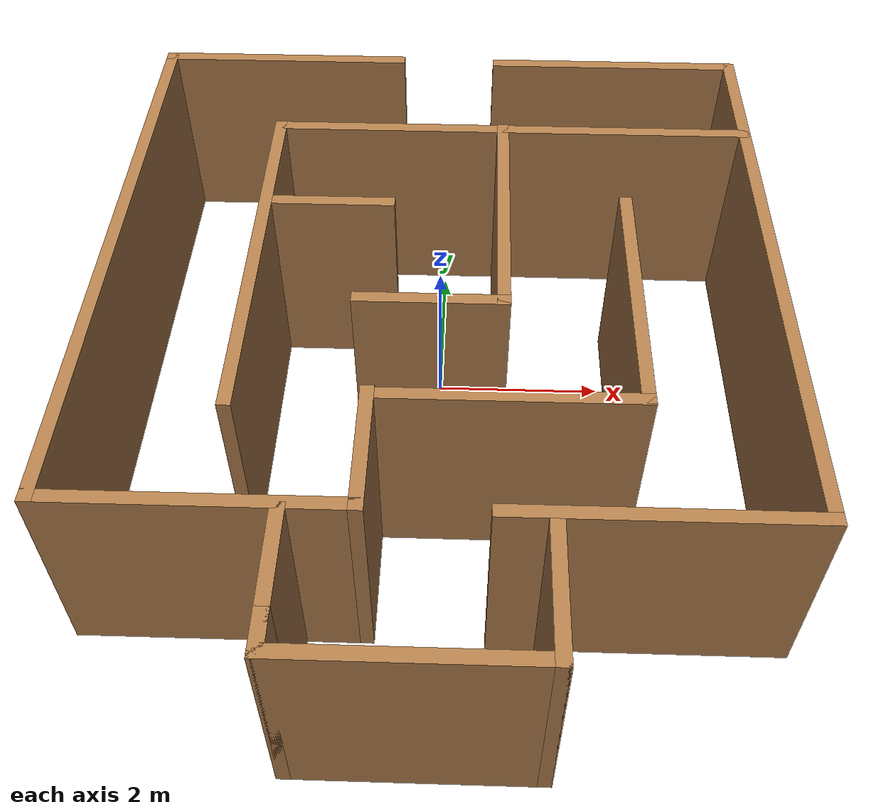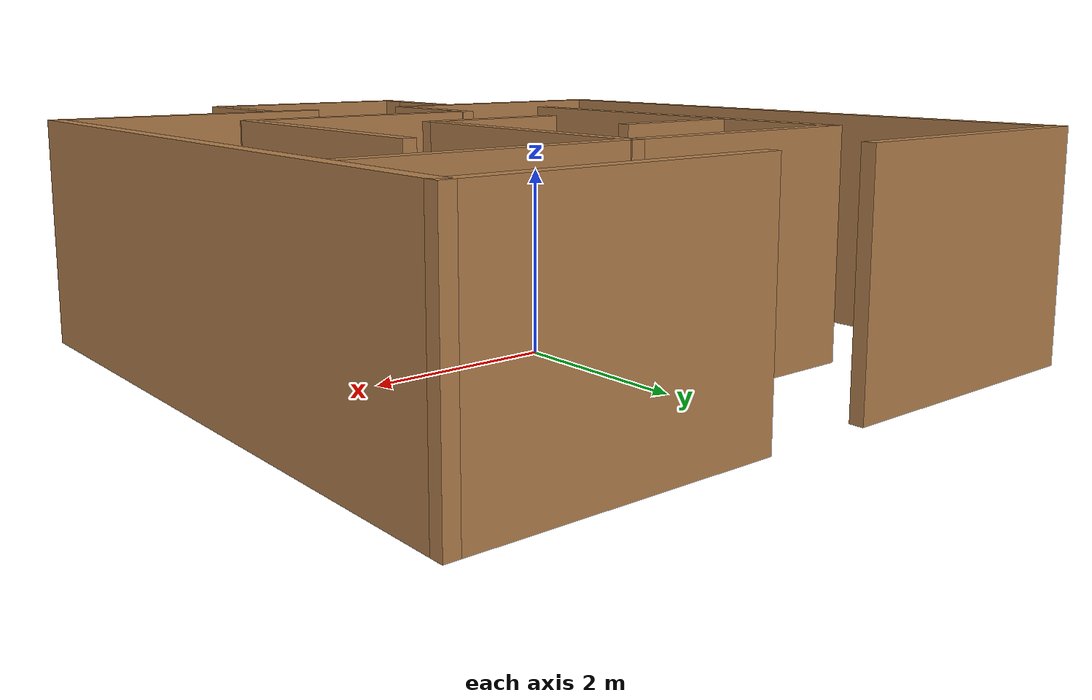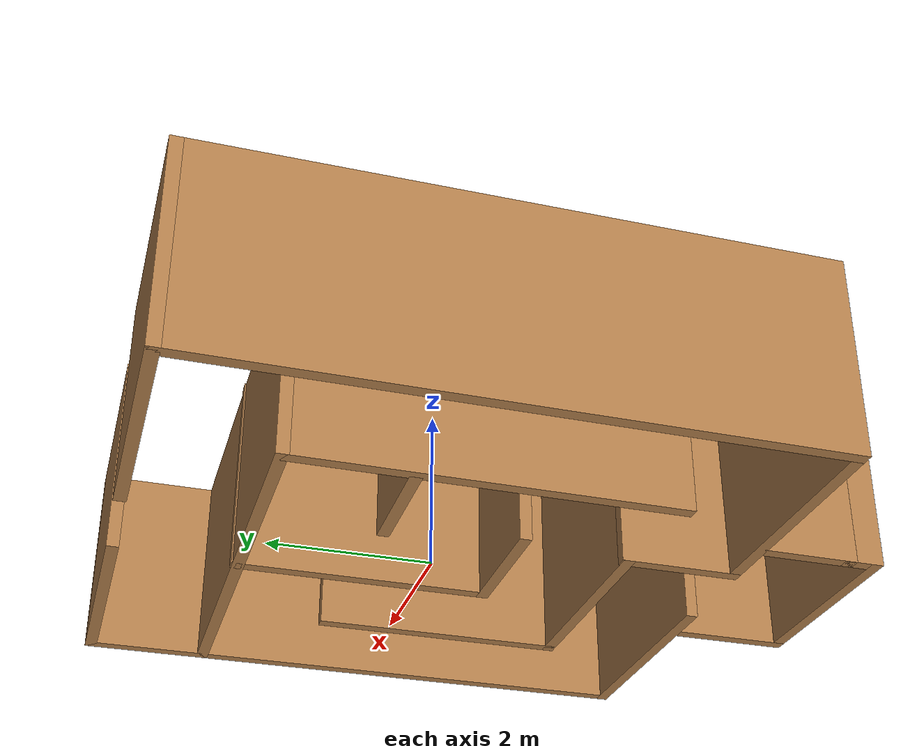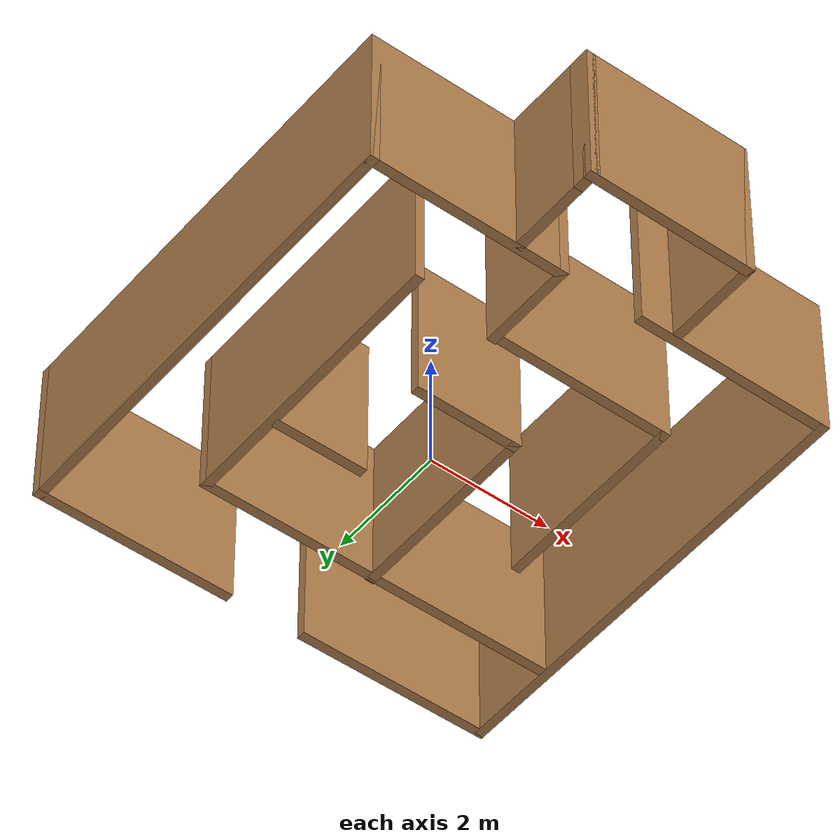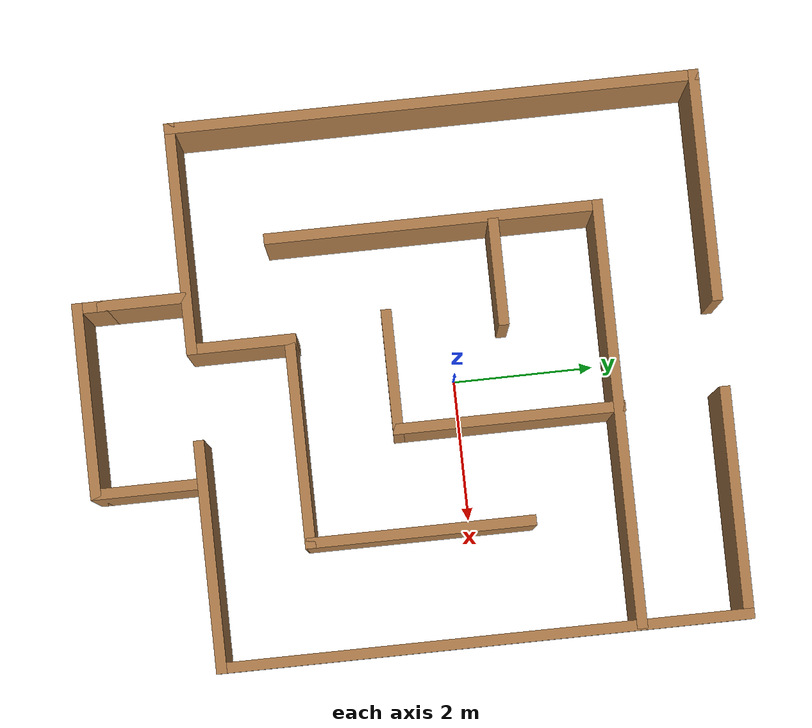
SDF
<?xml version='1.0'?>
<sdf version='1.7'>
  <model name='my_maze'>
    <pose>-0.009006 -0.706474 0 0 -0 0</pose>
    <link name='Wall_11'>
      <collision name='Wall_11_Collision'>
        <geometry>
          <box>
            <size>3.25 0.15 2.5</size>
          </box>
        </geometry>
        <pose>0 0 1.25 0 -0 0</pose>
      </collision>
      <visual name='Wall_11_Visual'>
        <pose>0 0 1.25 0 -0 0</pose>
        <geometry>
          <box>
            <size>3.25 0.15 2.5</size>
          </box>
        </geometry>
        <material>
          <script>
            <uri>file://media/materials/scripts/gazebo.material</uri>
            <name>Gazebo/Wood</name>
          </script>
          <ambient>1 1 1 1</ambient>
        </material>
        <meta>
          <layer>0</layer>
        </meta>
      </visual>
      <pose>2.22337 -2.94352 0 0 -0 0</pose>
    </link>
    <link name='Wall_12'>
      <collision name='Wall_12_Collision'>
        <geometry>
          <box>
            <size>7.5 0.15 2.5</size>
          </box>
        </geometry>
        <pose>0 0 1.25 0 -0 0</pose>
      </collision>
      <visual name='Wall_12_Visual'>
        <pose>0 0 1.25 0 -0 0</pose>
        <geometry>
          <box>
            <size>7.5 0.15 2.5</size>
          </box>
        </geometry>
        <material>
          <script>
            <uri>file://media/materials/scripts/gazebo.material</uri>
            <name>Gazebo/Wood</name>
          </script>
          <ambient>1 1 1 1</ambient>
        </material>
        <meta>
          <layer>0</layer>
        </meta>
      </visual>
      <pose>3.77337 0.731485 0 0 -0 1.5708</pose>
    </link>
    <link name='Wall_13'>
      <collision name='Wall_13_Collision'>
        <geometry>
          <box>
            <size>3.25 0.15 2.5</size>
          </box>
        </geometry>
        <pose>0 0 1.25 0 -0 0</pose>
      </collision>
      <visual name='Wall_13_Visual'>
        <pose>0 0 1.25 0 -0 0</pose>
        <geometry>
          <box>
            <size>3.25 0.15 2.5</size>
          </box>
        </geometry>
        <material>
          <script>
            <uri>file://media/materials/scripts/gazebo.material</uri>
            <name>Gazebo/Wood</name>
          </script>
          <ambient>1 1 1 1</ambient>
        </material>
        <meta>
          <layer>0</layer>
        </meta>
      </visual>
      <pose>2.22337 4.40648 0 0 -0 3.14159</pose>
    </link>
    <link name='Wall_15'>
      <collision name='Wall_15_Collision'>
        <geometry>
          <box>
            <size>6 0.15 2.5</size>
          </box>
        </geometry>
        <pose>0 0 1.25 0 -0 0</pose>
      </collision>
      <visual name='Wall_15_Visual'>
        <pose>0 0 1.25 0 -0 0</pose>
        <geometry>
          <box>
            <size>6 0.15 2.5</size>
          </box>
        </geometry>
        <material>
          <script>
            <uri>file://media/materials/scripts/gazebo.material</uri>
            <name>Gazebo/Wood</name>
          </script>
          <ambient>1 1 1 1</ambient>
        </material>
        <meta>
          <layer>0</layer>
        </meta>
      </visual>
      <pose>0.826618 2.91566 0 0 -0 3.14159</pose>
    </link>
    <link name='Wall_16'>
      <collision name='Wall_16_Collision'>
        <geometry>
          <box>
            <size>4.75 0.15 2.5</size>
          </box>
        </geometry>
        <pose>0 0 1.25 0 -0 0</pose>
      </collision>
      <visual name='Wall_16_Visual'>
        <pose>0 0 1.25 0 -0 0</pose>
        <geometry>
          <box>
            <size>4.75 0.15 2.5</size>
          </box>
        </geometry>
        <material>
          <script>
            <uri>file://media/materials/scripts/gazebo.material</uri>
            <name>Gazebo/Wood</name>
          </script>
          <ambient>1 1 1 1</ambient>
        </material>
        <meta>
          <layer>0</layer>
        </meta>
      </visual>
      <pose>-2.09838 0.615656 0 0 -0 -1.5708</pose>
    </link>
    <link name='Wall_18'>
      <collision name='Wall_18_Collision'>
        <geometry>
          <box>
            <size>1.5 0.15 2.5</size>
          </box>
        </geometry>
        <pose>0 0 1.25 0 -0 0</pose>
      </collision>
      <visual name='Wall_18_Visual'>
        <pose>0 0 1.25 0 -0 0</pose>
        <geometry>
          <box>
            <size>1.5 0.15 2.5</size>
          </box>
        </geometry>
        <material>
          <script>
            <uri>file://media/materials/scripts/gazebo.material</uri>
            <name>Gazebo/Wood</name>
          </script>
          <ambient>1 1 1 1</ambient>
        </material>
        <meta>
          <layer>0</layer>
        </meta>
      </visual>
      <pose>-1.31339 1.44649 0 0 -0 3.14159</pose>
    </link>
    <link name='Wall_20'>
      <collision name='Wall_20_Collision'>
        <geometry>
          <box>
            <size>3.25 0.15 2.5</size>
          </box>
        </geometry>
        <pose>0 0 1.25 0 -0 0</pose>
      </collision>
      <visual name='Wall_20_Visual'>
        <pose>0 0 1.25 0 -0 0</pose>
        <geometry>
          <box>
            <size>3.25 0.15 2.5</size>
          </box>
        </geometry>
        <material>
          <script>
            <uri>file://media/materials/scripts/gazebo.material</uri>
            <name>Gazebo/Wood</name>
          </script>
          <ambient>1 1 1 1</ambient>
        </material>
        <meta>
          <layer>0</layer>
        </meta>
      </visual>
      <pose>0.725838 1.38315 0 0 -0 -1.5708</pose>
    </link>
    <link name='Wall_21'>
      <collision name='Wall_21_Collision'>
        <geometry>
          <box>
            <size>1.75 0.15 2.5</size>
          </box>
        </geometry>
        <pose>0 0 1.25 0 -0 0</pose>
      </collision>
      <visual name='Wall_21_Visual'>
        <pose>0 0 1.25 0 -0 0</pose>
        <geometry>
          <box>
            <size>1.75 0.15 2.5</size>
          </box>
        </geometry>
        <material>
          <script>
            <uri>file://media/materials/scripts/gazebo.material</uri>
            <name>Gazebo/Wood</name>
          </script>
          <ambient>1 1 1 1</ambient>
        </material>
        <meta>
          <layer>0</layer>
        </meta>
      </visual>
      <pose>-0.074162 -0.166854 0 0 -0 3.14159</pose>
    </link>
    <link name='Wall_23'>
      <collision name='Wall_23_Collision'>
        <geometry>
          <box>
            <size>1.25 0.15 2.5</size>
          </box>
        </geometry>
        <pose>0 0 1.25 0 -0 0</pose>
      </collision>
      <visual name='Wall_23_Visual'>
        <pose>0 0 1.25 0 -0 0</pose>
        <geometry>
          <box>
            <size>1.25 0.15 2.5</size>
          </box>
        </geometry>
        <material>
          <script>
            <uri>file://media/materials/scripts/gazebo.material</uri>
            <name>Gazebo/Wood</name>
          </script>
          <ambient>1 1 1 1</ambient>
        </material>
        <meta>
          <layer>0</layer>
        </meta>
      </visual>
      <pose>-1.39936 -3.53729 0 0 -0 -1.5708</pose>
    </link>
    <link name='Wall_24'>
      <collision name='Wall_24_Collision'>
        <geometry>
          <box>
            <size>0.5 0.15 2.5</size>
          </box>
        </geometry>
        <pose>0 0 1.25 0 -0 0</pose>
      </collision>
      <visual name='Wall_24_Visual'>
        <pose>0 0 1.25 0 -0 0</pose>
        <geometry>
          <box>
            <size>0.5 0.15 2.5</size>
          </box>
        </geometry>
        <material>
          <script>
            <uri>file://media/materials/scripts/gazebo.material</uri>
            <name>Gazebo/Wood</name>
          </script>
          <ambient>1 1 1 1</ambient>
        </material>
        <meta>
          <layer>0</layer>
        </meta>
      </visual>
      <pose>-1.39936 -4.26229 0 0 -0 -1.5708</pose>
    </link>
    <link name='Wall_25'>
      <collision name='Wall_25_Collision'>
        <geometry>
          <box>
            <size>2.75 0.15 2.5</size>
          </box>
        </geometry>
        <pose>0 0 1.25 0 -0 0</pose>
      </collision>
      <visual name='Wall_25_Visual'>
        <pose>0 0 1.25 0 -0 0</pose>
        <geometry>
          <box>
            <size>2.75 0.15 2.5</size>
          </box>
        </geometry>
        <material>
          <script>
            <uri>file://media/materials/scripts/gazebo.material</uri>
            <name>Gazebo/Wood</name>
          </script>
          <ambient>1 1 1 1</ambient>
        </material>
        <meta>
          <layer>0</layer>
        </meta>
      </visual>
      <pose>-0.099358 -4.43729 0 0 -0 0</pose>
    </link>
    <link name='Wall_26'>
      <collision name='Wall_26_Collision'>
        <geometry>
          <box>
            <size>1.5 0.15 2.5</size>
          </box>
        </geometry>
        <pose>0 0 1.25 0 -0 0</pose>
      </collision>
      <visual name='Wall_26_Visual'>
        <pose>0 0 1.25 0 -0 0</pose>
        <geometry>
          <box>
            <size>1.5 0.15 2.5</size>
          </box>
        </geometry>
        <material>
          <script>
            <uri>file://media/materials/scripts/gazebo.material</uri>
            <name>Gazebo/Wood</name>
          </script>
          <ambient>1 1 1 1</ambient>
        </material>
        <meta>
          <layer>0</layer>
        </meta>
      </visual>
      <pose>1.20064 -3.76229 0 0 -0 1.5708</pose>
    </link>
    <link name='Wall_4'>
      <collision name='Wall_4_Collision'>
        <geometry>
          <box>
            <size>3.25 0.15 2.5</size>
          </box>
        </geometry>
        <pose>0 0 1.25 0 -0 0</pose>
      </collision>
      <visual name='Wall_4_Visual'>
        <pose>0 0 1.25 0 -0 0</pose>
        <geometry>
          <box>
            <size>3.25 0.15 2.5</size>
          </box>
        </geometry>
        <material>
          <script>
            <uri>file://media/materials/scripts/gazebo.material</uri>
            <name>Gazebo/Wood</name>
          </script>
          <ambient>1 1 1 1</ambient>
        </material>
        <meta>
          <layer>0</layer>
        </meta>
      </visual>
      <pose>-2.22337 4.43729 0 0 -0 3.14159</pose>
    </link>
    <link name='Wall_5'>
      <collision name='Wall_5_Collision'>
        <geometry>
          <box>
            <size>7.5 0.15 2.5</size>
          </box>
        </geometry>
        <pose>0 0 1.25 0 -0 0</pose>
      </collision>
      <visual name='Wall_5_Visual'>
        <pose>0 0 1.25 0 -0 0</pose>
        <geometry>
          <box>
            <size>7.5 0.15 2.5</size>
          </box>
        </geometry>
        <material>
          <script>
            <uri>file://media/materials/scripts/gazebo.material</uri>
            <name>Gazebo/Wood</name>
          </script>
          <ambient>1 1 1 1</ambient>
        </material>
        <meta>
          <layer>0</layer>
        </meta>
      </visual>
      <pose>-3.77337 0.762292 0 0 -0 -1.5708</pose>
    </link>
    <link name='Wall_6'>
      <collision name='Wall_6_Collision'>
        <geometry>
          <box>
            <size>3.25 0.15 2.5</size>
          </box>
        </geometry>
        <pose>0 0 1.25 0 -0 0</pose>
      </collision>
      <visual name='Wall_6_Visual'>
        <pose>0 0 1.25 0 -0 0</pose>
        <geometry>
          <box>
            <size>3.25 0.15 2.5</size>
          </box>
        </geometry>
        <material>
          <script>
            <uri>file://media/materials/scripts/gazebo.material</uri>
            <name>Gazebo/Wood</name>
          </script>
          <ambient>1 1 1 1</ambient>
        </material>
        <meta>
          <layer>0</layer>
        </meta>
      </visual>
      <pose>-2.22337 -2.91271 0 0 -0 0</pose>
    </link>
    <link name='Wall_7'>
      <collision name='Wall_7_Collision'>
        <geometry>
          <box>
            <size>1.54023 0.15 2.5</size>
          </box>
        </geometry>
        <pose>0 0 1.25 0 -0 0</pose>
      </collision>
      <visual name='Wall_7_Visual'>
        <pose>0 0 1.25 0 -0 0</pose>
        <geometry>
          <box>
            <size>1.54023 0.15 2.5</size>
          </box>
        </geometry>
        <material>
          <script>
            <uri>file://media/materials/scripts/gazebo.material</uri>
            <name>Gazebo/Wood</name>
          </script>
          <ambient>1 1 1 1</ambient>
        </material>
        <meta>
          <layer>0</layer>
        </meta>
      </visual>
      <pose>-0.673367 -2.2176 0 0 -0 1.5708</pose>
    </link>
    <link name='Wall_8'>
      <collision name='Wall_8_Collision'>
        <geometry>
          <box>
            <size>3 0.15 2.5</size>
          </box>
        </geometry>
        <pose>0 0 1.25 0 -0 0</pose>
      </collision>
      <visual name='Wall_8_Visual'>
        <pose>0 0 1.25 0 -0 0</pose>
        <geometry>
          <box>
            <size>3 0.15 2.5</size>
          </box>
        </geometry>
        <material>
          <script>
            <uri>file://media/materials/scripts/gazebo.material</uri>
            <name>Gazebo/Wood</name>
          </script>
          <ambient>1 1 1 1</ambient>
        </material>
        <meta>
          <layer>0</layer>
        </meta>
      </visual>
      <pose>0.751633 -1.54259 0 0 -0 0</pose>
    </link>
    <link name='Wall_9'>
      <collision name='Wall_9_Collision'>
        <geometry>
          <box>
            <size>3.20977 0.15 2.5</size>
          </box>
        </geometry>
        <pose>0 0 1.25 0 -0 0</pose>
      </collision>
      <visual name='Wall_9_Visual'>
        <pose>0 0 1.25 0 -0 0</pose>
        <geometry>
          <box>
            <size>3.20977 0.15 2.5</size>
          </box>
        </geometry>
        <material>
          <script>
            <uri>file://media/materials/scripts/gazebo.material</uri>
            <name>Gazebo/Wood</name>
          </script>
          <ambient>1 1 1 1</ambient>
        </material>
        <meta>
          <layer>0</layer>
        </meta>
      </visual>
      <pose>2.17663 0.007405 0 0 -0 1.5708</pose>
    </link>
    <static>1</static>
  </model>
</sdf>
